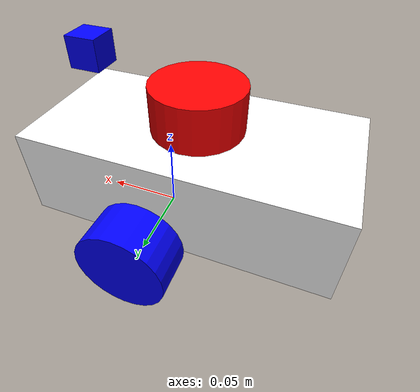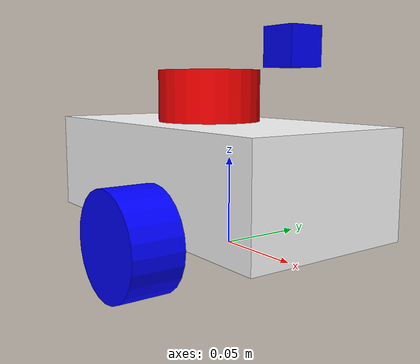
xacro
<?xml version="1.0"?>
<robot xmlns:xacro="http://www.ros.org/wiki/xacro" name="urdf_tutorial">

    <!-- MACROS -->
    <xacro:include filename="macros.xacro"/>

    <!-- COLOR -->
    <material name="white">
        <color rgba="1 1 1 1" />
    </material>

    <material name="blue">
        <color rgba="0 0 1 1"/>
    </material>

    <material name="black">
        <color rgba="0 0 0 1"/>
    </material>

    <material name="red">
        <color rgba="1 0 0 1"/>
    </material>
  <link name="base_footprint"/>

  <joint name="base_joint" type="fixed">
    <parent link="base_footprint"/>
    <child link="base_link" />
    <origin xyz="0 0 0.010" rpy="0 0 0"/>
  </joint>

    <!-- BASE LINK -->
    <link name="base_link">
    </link>

    <!-- BODY LINK -->
    <joint name="body_joint" type="fixed">
        <parent link="base_link"/>
        <child link="body"/>
        <origin xyz="-0.12 0 0"/>
    </joint>

    <link name="body">
        <visual>
            <origin xyz="0.1 0 0.03"/>
            <geometry>
                <box size="0.2 0.1 0.06"/>
            </geometry>
            <material name="white"/>
        </visual>
        <collision>
            <origin xyz="0.1 0 0.03"/>
            <geometry>
                <box size="0.2 0.1 0.06"/>
            </geometry>
        </collision>
        <xacro:inertial_box mass="0.5" x="0.2" y="0.1" z="0.06">
            <origin xyz="0.1 0 0.03" rpy="0 0 0"/>
        </xacro:inertial_box>
    </link>

    <gazebo reference="body">
        <material>Gazebo/White</material>
    </gazebo>

    <!-- LEFT WHEEL LINK -->
    <joint name="left_wheel_joint" type="continuous">
        <parent link="base_link"/>
        <child link="left_wheel"/>
        <origin xyz="0 0.065 0" rpy="-${pi/2} 0 0" />
        <axis xyz="0 0 1"/>
    </joint>

    <link name="left_wheel">
        <visual>
            <geometry>
                <cylinder radius="0.03" length="0.03"/>
            </geometry>
            <material name="blue"/>
        </visual>
        <collision>
            <geometry>
                <cylinder radius="0.03" length="0.03"/>
            </geometry>
        </collision>
        <xacro:inertial_cylinder mass="0.1" length="0.03" radius="0.03">
            <origin xyz="0 0 0" rpy="0 0 0"/>
        </xacro:inertial_cylinder>
    </link>

    <gazebo reference="left_wheel">
        <material>Gazebo/Black</material>
    </gazebo>

    <!-- RIGHT WHEEL LINK -->
    <joint name="right_wheel_joint" type="continuous">
        <parent link="base_link"/>
        <child link="right_wheel"/>
        <origin xyz="0 -0.065 0" rpy="${pi/2} 0 0" />
        <axis xyz="0 0 -1"/>
    </joint>

    <link name="right_wheel">
        <visual>
            <geometry>
                <cylinder radius="0.03" length="0.03"/>
            </geometry>
            <material name="blue"/>
        </visual>
        <collision>
            <geometry>
                <cylinder radius="0.03" length="0.03"/>
            </geometry>
        </collision>
        <xacro:inertial_cylinder mass="0.1" length="0.03" radius="0.03">
            <origin xyz="0 0 0" rpy="0 0 0"/>
        </xacro:inertial_cylinder>
    </link>

    <gazebo reference="right_wheel">
        <material>Gazebo/Black</material>
    </gazebo>

    <!-- CASTER WHEEL LINK -->
    <joint name="caster_wheel_joint" type="fixed">
        <parent link="body"/>
        <child link="caster_wheel"/>
        <origin xyz="0.03 0 0"/>
    </joint>

    <link name="caster_wheel">
        <visual>
            <geometry>
                <sphere radius="0.03"/>
            </geometry>
            <material name="black"/>
        </visual>
        <collision>
            <geometry>
                <sphere radius="0.03"/>
            </geometry>
        </collision>
        <xacro:inertial_sphere mass="0.1" radius="0.03">
            <origin xyz="0 0 0" rpy="0 0 0"/>
        </xacro:inertial_sphere>
    </link>

    <gazebo reference="caster_wheel">
        <material>Gazebo/Blue</material>

        <mu1 value="0.001"/>
        <mu2 value="0.001"/>
    </gazebo>

    <!-- LiDAR -->
    <joint name="laser_joint" type="fixed">
        <parent link="body"/>
        <child link="laser_frame"/>
        <origin xyz="0.1 0 0.075" rpy="0 0 0"/>
    </joint>

    <link name="laser_frame">
        <visual>
            <geometry>
                <cylinder radius="0.03" length="0.03"/>
            </geometry>
            <material name="red"/>
        </visual>
        <collision>
            <geometry>
                <cylinder radius="0.03" length="0.03"/>
            </geometry>
        </collision>
    </link>

    <!-- IMU LINK 추가 -->
    <joint name="imu_joint" type="fixed">
        <parent link="base_link"/>  <!-- IMU는 로봇 본체에 부착 -->
        <child link="imu_link"/>
        <origin xyz="0.05 0 0.1" rpy="0 0 0"/> <!-- IMU 위치 조정 -->
    </joint>

    <link name="imu_link">
        <visual>
            <geometry>
                <box size="0.02 0.02 0.02"/>  <!-- IMU 크기 -->
            </geometry>
            <material name="blue"/>
        </visual>
        <collision>
            <geometry>
                <box size="0.02 0.02 0.02"/>
            </geometry>
        </collision>
        <inertial>
            <mass value="0.05"/>
            <origin xyz="0 0 0" rpy="0 0 0"/>
            <inertia ixx="1.0e-5" iyy="1.0e-5" izz="1.0e-5"/>
        </inertial>
    </link>

    <!-- GAZEBO -->
    <xacro:include filename="gazebo.xacro"/>
    <xacro:include filename="lidar.xacro"/>

</robot>
